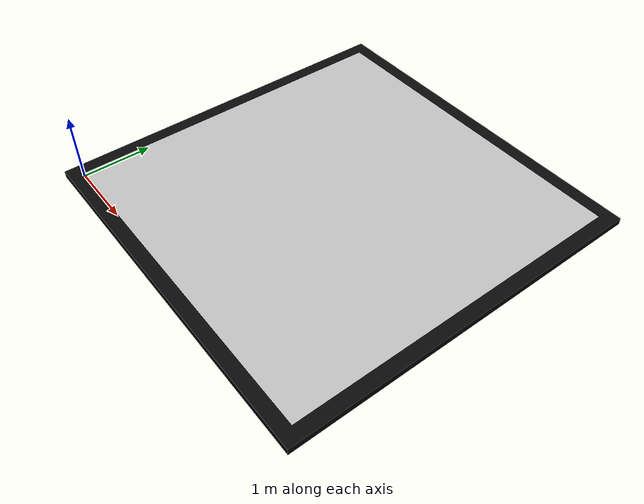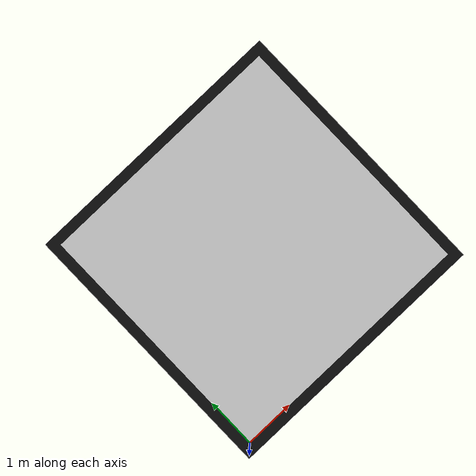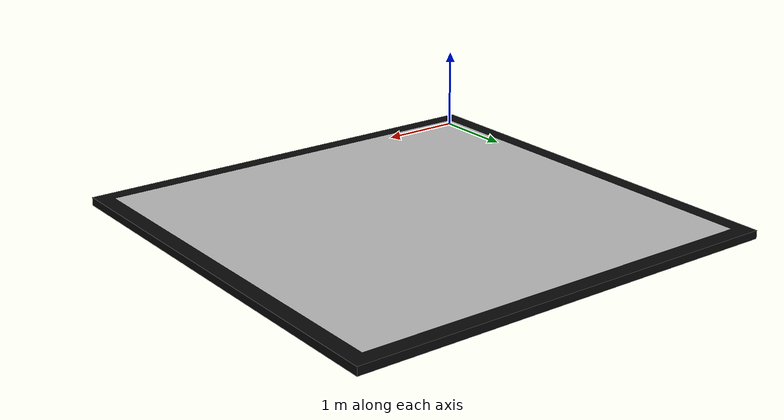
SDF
<?xml version="1.0" ?>

<sdf version="1.10">
  <world name='empty'>

    <physics name='1ms' type='ignored'>
      <max_step_size>0.001</max_step_size>
      <real_time_factor>1</real_time_factor>
      <real_time_update_rate>1000</real_time_update_rate>
    </physics>

    <plugin name='gz::sim::systems::Physics' filename='gz-sim-physics-system'/>
    <plugin name='gz::sim::systems::UserCommands' filename='gz-sim-user-commands-system'/>
    <plugin name='gz::sim::systems::SceneBroadcaster' filename='gz-sim-scene-broadcaster-system'/>
    <plugin name='gz::sim::systems::Contact' filename='gz-sim-contact-system'/>

    <gravity>0 0 -9.80665</gravity>
    <magnetic_field>5.5644999999999998e-06 2.2875799999999999e-05 -4.2388400000000002e-05</magnetic_field>
    <atmosphere type='adiabatic'/>
    <include>
      <uri>model://sun</uri>
    </include>

    <include>
      <name>diffusion_stage</name>
      <uri>model://path_tracking_stage</uri>
      <static>true</static>
      <pose>0 0 0.05 0 0 0</pose>
    </include>

  </world>
</sdf>

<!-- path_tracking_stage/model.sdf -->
<sdf version="1.6">
  <model name="path_tracking_stage">
    <static>true</static>
    <link name="link">
      <collision name="collision">
        <geometry>
          <mesh>
            <scale>1 1 1</scale>
            <uri>model://path_tracking_stage/meshes/diffusion_stage.stl</uri>
          </mesh>
        </geometry>
        <surface>
          <friction>
            <ode>
              <mu>1.2</mu>
              <mu2>1.2</mu2>
            </ode>
          </friction>
        </surface>
      </collision>
      <visual name="visual">
        <geometry>
          <mesh>
            <scale>1 1 1</scale>
            <uri>model://path_tracking_stage/meshes/diffusion_stage.dae</uri>
          </mesh>
        </geometry>
      </visual>
    </link>
  </model>
</sdf>
